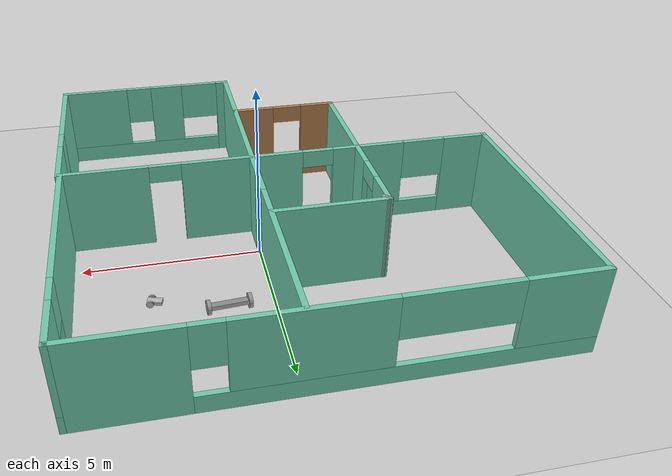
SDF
<sdf version="1.6">
 <world name="default">
  <plugin name="hello" filename="libhello.so"/>
  <light name="sun" type="directional">
   <pose>0 0 10 0 -0 0</pose>
   <diffuse>0.8 0.8 0.8 1</diffuse>
   <specular>0.2 0.2 0.2 1</specular>
   <attenuation>
    <range>1000</range>
    <constant>0.9</constant>
    <linear>0.01</linear>
    <quadratic>0.001</quadratic>
   </attenuation>
   <direction>-0.5 0.1 -0.9</direction>
  </light>
  <model name="ground_plane">
   <static>1</static>
   <link name="link">
    <collision name="collision">
     <geometry><plane><normal>0 0 1</normal><size>100 100</size></plane></geometry>
     <surface>
      <contact><collide_bitmask>65535</collide_bitmask></contact>
      <friction><ode><mu>100</mu><mu2>50</mu2></ode></friction>
     </surface>
    </collision>
    <visual name="visual">
     <cast_shadows>0</cast_shadows>
     <geometry><plane><normal>0 0 1</normal><size>100 100</size></plane></geometry>
     <material>
      <script><uri>file://media/materials/scripts/gazebo.material</uri><name>Gazebo/Grey</name></script>
     </material>
    </visual>
   </link>
  </model>
  <gravity>0 0 -9.8</gravity>
  <magnetic_field>6e-06 2.3e-05 -4.2e-05</magnetic_field>
  <atmosphere type="adiabatic"/>
  <physics name="default_physics" default="0" type="ode">
   <max_step_size>0.001</max_step_size>
   <real_time_factor>1</real_time_factor>
   <real_time_update_rate>1000</real_time_update_rate>
  </physics>
  <scene><ambient>0.4 0.4 0.4 1</ambient><background>0.7 0.7 0.7 1</background><shadows>1</shadows></scene>
  <spherical_coordinates>
   <surface_model>EARTH_WGS84</surface_model>
   <latitude_deg>0</latitude_deg>
   <longitude_deg>0</longitude_deg>
   <elevation>0</elevation>
   <heading_deg>0</heading_deg>
  </spherical_coordinates>
  <model name="robot">
   <link name="link_0">
    <pose>0.736695 0.952784 0.2 0 -0 0</pose>
    <inertial>
     <mass>1</mass>
     <inertia>
      <ixx>0.166667</ixx>
      <ixy>0</ixy>
      <ixz>0</ixz>
      <iyy>0.166667</iyy>
      <iyz>0</iyz>
      <izz>0.166667</izz>
     </inertia>
    </inertial>
    <visual name="visual">
     <geometry><box><size>0.3 1 0.1</size></box></geometry>
     <material>
      <lighting>1</lighting>
      <script><uri>file://media/materials/scripts/gazebo.material</uri><name>Gazebo/Grey</name></script>
      <shader type="pixel"><normal_map>__default__</normal_map></shader>
      <ambient>0.3 0.3 0.3 1</ambient>
      <diffuse>0.7 0.7 0.7 1</diffuse>
      <specular>0.01 0.01 0.01 1</specular>
      <emissive>0 0 0 1</emissive>
     </material>
    </visual>
    <collision name="collision">
     <geometry><box><size>0.3 1 0.1</size></box></geometry>
     <surface>
      <friction>
       <ode><mu>1</mu><mu2>1</mu2><fdir1>0 0 0</fdir1><slip1>0</slip1><slip2>0</slip2></ode>
       <torsional>
        <coefficient>1</coefficient>
        <patch_radius>0</patch_radius>
        <surface_radius>0</surface_radius>
        <use_patch_radius>1</use_patch_radius>
        <ode><slip>0</slip></ode>
       </torsional>
      </friction>
      <bounce><restitution_coefficient>0</restitution_coefficient><threshold>1e+06</threshold></bounce>
      <contact>
       <collide_without_contact>0</collide_without_contact>
       <collide_without_contact_bitmask>1</collide_without_contact_bitmask>
       <collide_bitmask>1</collide_bitmask>
       <ode>
        <soft_cfm>0</soft_cfm>
        <soft_erp>0.2</soft_erp>
        <kp>1e+13</kp>
        <kd>1</kd>
        <max_vel>0.01</max_vel>
        <min_depth>0</min_depth>
       </ode>
       <bullet>
        <split_impulse>1</split_impulse>
        <split_impulse_penetration_threshold>-0.01</split_impulse_penetration_threshold>
        <soft_cfm>0</soft_cfm>
        <soft_erp>0.2</soft_erp>
        <kp>1e+13</kp>
        <kd>1</kd>
       </bullet>
      </contact>
     </surface>
    </collision>
   </link>
   <link name="link_1">
    <pose>0.736695 1.5928 0.2 1.5707 -0 0</pose>
    <inertial>
     <mass>1</mass>
     <inertia><ixx>0.145833</ixx><ixy>0</ixy><ixz>0</ixz><iyy>0.145833</iyy><iyz>0</iyz><izz>0.125</izz></inertia>
    </inertial>
    <visual name="visual">
     <pose>0 0 0.1 0 -0 0</pose>
     <geometry><cylinder><radius>0.2</radius><length>0.1</length></cylinder></geometry>
     <material>
      <lighting>1</lighting>
      <script><uri>file://media/materials/scripts/gazebo.material</uri><name>Gazebo/Grey</name></script>
      <shader type="pixel"><normal_map>__default__</normal_map></shader>
      <ambient>0.3 0.3 0.3 1</ambient>
      <diffuse>0.7 0.7 0.7 1</diffuse>
      <specular>0.01 0.01 0.01 1</specular>
      <emissive>0 0 0 1</emissive>
     </material>
    </visual>
    <collision name="collision">
     <pose>0 0 0.1 0 -0 0</pose>
     <geometry><cylinder><radius>0.2</radius><length>0.1</length></cylinder></geometry>
     <surface>
      <friction>
       <ode><mu>1</mu><mu2>1</mu2><fdir1>0 0 0</fdir1><slip1>0</slip1><slip2>0</slip2></ode>
       <torsional>
        <coefficient>1</coefficient>
        <patch_radius>0</patch_radius>
        <surface_radius>0</surface_radius>
        <use_patch_radius>1</use_patch_radius>
        <ode><slip>0</slip></ode>
       </torsional>
      </friction>
      <bounce><restitution_coefficient>0</restitution_coefficient><threshold>1e+06</threshold></bounce>
      <contact>
       <collide_without_contact>0</collide_without_contact>
       <collide_without_contact_bitmask>1</collide_without_contact_bitmask>
       <collide_bitmask>1</collide_bitmask>
       <ode>
        <soft_cfm>0</soft_cfm>
        <soft_erp>0.2</soft_erp>
        <kp>1e+13</kp>
        <kd>1</kd>
        <max_vel>0.01</max_vel>
        <min_depth>0</min_depth>
       </ode>
       <bullet>
        <split_impulse>1</split_impulse>
        <split_impulse_penetration_threshold>-0.01</split_impulse_penetration_threshold>
        <soft_cfm>0</soft_cfm>
        <soft_erp>0.2</soft_erp>
        <kp>1e+13</kp>
        <kd>1</kd>
       </bullet>
      </contact>
     </surface>
    </collision>
   </link>
   <link name="link_1_clone">
    <pose>0.736695 0.402764 0.2 1.5707 -0 0</pose>
    <inertial>
     <mass>1</mass>
     <inertia><ixx>0.145833</ixx><ixy>0</ixy><ixz>0</ixz><iyy>0.145833</iyy><iyz>0</iyz><izz>0.125</izz></inertia>
    </inertial>
    <visual name="visual">
     <geometry><cylinder><radius>0.2</radius><length>0.1</length></cylinder></geometry>
     <material>
      <lighting>1</lighting>
      <script><uri>file://media/materials/scripts/gazebo.material</uri><name>Gazebo/Grey</name></script>
      <shader type="pixel"><normal_map>__default__</normal_map></shader>
      <ambient>0.3 0.3 0.3 1</ambient>
      <diffuse>0.7 0.7 0.7 1</diffuse>
      <specular>0.01 0.01 0.01 1</specular>
      <emissive>0 0 0 1</emissive>
     </material>
    </visual>
    <collision name="collision">
     <geometry><cylinder><radius>0.2</radius><length>0.1</length></cylinder></geometry>
     <surface>
      <friction>
       <ode><mu>1</mu><mu2>1</mu2><fdir1>0 0 0</fdir1><slip1>0</slip1><slip2>0</slip2></ode>
       <torsional>
        <coefficient>1</coefficient>
        <patch_radius>0</patch_radius>
        <surface_radius>0</surface_radius>
        <use_patch_radius>1</use_patch_radius>
        <ode><slip>0</slip></ode>
       </torsional>
      </friction>
      <bounce><restitution_coefficient>0</restitution_coefficient><threshold>1e+06</threshold></bounce>
      <contact>
       <collide_without_contact>0</collide_without_contact>
       <collide_without_contact_bitmask>1</collide_without_contact_bitmask>
       <collide_bitmask>1</collide_bitmask>
       <ode>
        <soft_cfm>0</soft_cfm>
        <soft_erp>0.2</soft_erp>
        <kp>1e+13</kp>
        <kd>1</kd>
        <max_vel>0.01</max_vel>
        <min_depth>0</min_depth>
       </ode>
       <bullet>
        <split_impulse>1</split_impulse>
        <split_impulse_penetration_threshold>-0.01</split_impulse_penetration_threshold>
        <soft_cfm>0</soft_cfm>
        <soft_erp>0.2</soft_erp>
        <kp>1e+13</kp>
        <kd>1</kd>
       </bullet>
      </contact>
     </surface>
    </collision>
   </link>
   <joint name="link_0_JOINT_0" type="revolute">
    <parent>link_0</parent>
    <child>link_1_clone</child>
    <axis>
     <xyz>0 0 1</xyz>
     <use_parent_model_frame>0</use_parent_model_frame>
     <limit>
      <lower>-1.79769e+308</lower>
      <upper>1.79769e+308</upper>
      <effort>-1</effort>
      <velocity>-1</velocity>
     </limit>
     <dynamics>
      <spring_reference>0</spring_reference>
      <spring_stiffness>0</spring_stiffness>
      <damping>0</damping>
     </dynamics>
    </axis>
    <physics>
     <ode><limit><cfm>0</cfm><erp>0.2</erp></limit><suspension><cfm>0</cfm><erp>0.2</erp></suspension></ode>
    </physics>
   </joint>
   <joint name="link_0_JOINT_1" type="revolute">
    <parent>link_0</parent>
    <child>link_1</child>
    <axis>
     <xyz>0 0 1</xyz>
     <use_parent_model_frame>0</use_parent_model_frame>
     <limit>
      <lower>-1.79769e+308</lower>
      <upper>1.79769e+308</upper>
      <effort>-1</effort>
      <velocity>-1</velocity>
     </limit>
     <dynamics>
      <spring_reference>0</spring_reference>
      <spring_stiffness>0</spring_stiffness>
      <damping>0</damping>
     </dynamics>
    </axis>
    <physics>
     <ode><limit><cfm>0</cfm><erp>0.2</erp></limit><suspension><cfm>0</cfm><erp>0.2</erp></suspension></ode>
    </physics>
   </joint>
   <static>0</static>
   <pose>2.20388 1.80851 -0.202365 -9e-06 -0.2901 1.64443</pose>
  </model>
  <model name="house">
   <pose>-0.87755 -0.55486 0 0 -0 0</pose>
   <link name="Wall_0">
    <collision name="Wall_0_Collision">
     <geometry><box><size>7 0.15 2.5</size></box></geometry>
     <pose>0 0 1.25 0 -0 0</pose>
    </collision>
    <visual name="Wall_0_Visual">
     <pose>0 0 1.25 0 -0 0</pose>
     <geometry><box><size>7 0.15 2.5</size></box></geometry>
     <material>
      <script><uri>file://media/materials/scripts/gazebo.material</uri><name>Gazebo/Grey</name></script>
      <ambient>0.435294 0.796078 0.67451 1</ambient>
     </material>
     <meta><layer>0</layer></meta>
    </visual>
    <pose>-6.19953 2.7899 0 0 0 -1.5708</pose>
   </link>
   <link name="Wall_1">
    <pose>-0.024526 -0.635099 0 0 -0 0</pose>
    <visual name="Wall_1_Visual_0">
     <pose>-5.57633 0 1.25 0 -0 0</pose>
     <geometry><box><size>1.34734 0.15 2.5</size></box></geometry>
     <material>
      <script><uri>file://media/materials/scripts/gazebo.material</uri><name>Gazebo/Grey</name></script>
      <ambient>0.435294 0.796078 0.67451 1</ambient>
     </material>
     <meta><layer>0</layer></meta>
    </visual>
    <collision name="Wall_1_Collision_0">
     <geometry><box><size>1.34734 0.15 2.5</size></box></geometry>
     <pose>-5.57633 0 1.25 0 -0 0</pose>
    </collision>
    <visual name="Wall_1_Visual_1">
     <pose>1.13789 0 1.25 0 -0 0</pose>
     <geometry><box><size>3.49001 0.15 2.5</size></box></geometry>
     <material>
      <script><uri>file://media/materials/scripts/gazebo.material</uri><name>Gazebo/Grey</name></script>
      <ambient>0.435294 0.796078 0.67451 1</ambient>
     </material>
     <meta><layer>0</layer></meta>
    </visual>
    <collision name="Wall_1_Collision_1">
     <geometry><box><size>3.49001 0.15 2.5</size></box></geometry>
     <pose>1.13789 0 1.25 0 -0 0</pose>
    </collision>
    <visual name="Wall_1_Visual_2">
     <pose>5.01645 0 1.25 0 -0 0</pose>
     <geometry><box><size>2.46711 0.15 2.5</size></box></geometry>
     <material>
      <script><uri>file://media/materials/scripts/gazebo.material</uri><name>Gazebo/Grey</name></script>
      <ambient>0.435294 0.796078 0.67451 1</ambient>
     </material>
     <meta><layer>0</layer></meta>
    </visual>
    <collision name="Wall_1_Collision_2">
     <geometry><box><size>2.46711 0.15 2.5</size></box></geometry>
     <pose>5.01645 0 1.25 0 -0 0</pose>
    </collision>
    <visual name="Wall_1_Visual_3">
     <pose>-3.20489 0 0.25 0 -0 0</pose>
     <geometry><box><size>3.39554 0.15 0.5</size></box></geometry>
     <material>
      <script><uri>file://media/materials/scripts/gazebo.material</uri><name>Gazebo/Grey</name></script>
      <ambient>0.435294 0.796078 0.67451 1</ambient>
     </material>
     <meta><layer>0</layer></meta>
    </visual>
    <collision name="Wall_1_Collision_3">
     <geometry><box><size>3.39554 0.15 0.5</size></box></geometry>
     <pose>-3.20489 0 0.25 0 -0 0</pose>
    </collision>
    <visual name="Wall_1_Visual_4">
     <pose>-2.57752 0 1.5 0 -0 0</pose>
     <geometry><box><size>2.1408 0.15 2</size></box></geometry>
     <material>
      <script><uri>file://media/materials/scripts/gazebo.material</uri><name>Gazebo/Grey</name></script>
      <ambient>0.435294 0.796078 0.67451 1</ambient>
     </material>
     <meta><layer>0</layer></meta>
    </visual>
    <collision name="Wall_1_Collision_4">
     <geometry><box><size>2.1408 0.15 2</size></box></geometry>
     <pose>-2.57752 0 1.5 0 -0 0</pose>
    </collision>
    <visual name="Wall_1_Visual_5">
     <pose>-4.27529 0 1.9 0 -0 0</pose>
     <geometry><box><size>1.25474 0.15 1.2</size></box></geometry>
     <material>
      <script><uri>file://media/materials/scripts/gazebo.material</uri><name>Gazebo/Grey</name></script>
      <ambient>0.435294 0.796078 0.67451 1</ambient>
     </material>
     <meta><layer>0</layer></meta>
    </visual>
    <collision name="Wall_1_Collision_5">
     <geometry><box><size>1.25474 0.15 1.2</size></box></geometry>
     <pose>-4.27529 0 1.9 0 -0 0</pose>
    </collision>
    <visual name="Wall_1_Visual_6">
     <pose>3.33289 0 2.25 0 -0 0</pose>
     <geometry><box><size>0.9 0.15 0.5</size></box></geometry>
     <material>
      <script><uri>file://media/materials/scripts/gazebo.material</uri><name>Gazebo/Grey</name></script>
      <ambient>0.435294 0.796078 0.67451 1</ambient>
     </material>
     <meta><layer>0</layer></meta>
    </visual>
    <collision name="Wall_1_Collision_6">
     <geometry><box><size>0.9 0.15 0.5</size></box></geometry>
     <pose>3.33289 0 2.25 0 -0 0</pose>
    </collision>
    <visual name="Wall_1_Visual_7">
     <pose>-1.05712 0 2.25 0 -0 0</pose>
     <geometry><box><size>0.9 0.15 0.5</size></box></geometry>
     <material>
      <script><uri>file://media/materials/scripts/gazebo.material</uri><name>Gazebo/Grey</name></script>
      <ambient>0.435294 0.796078 0.67451 1</ambient>
     </material>
     <meta><layer>0</layer></meta>
    </visual>
    <collision name="Wall_1_Collision_7">
     <geometry><box><size>0.9 0.15 0.5</size></box></geometry>
     <pose>-1.05712 0 2.25 0 -0 0</pose>
    </collision>
   </link>
   <link name="Wall_10">
    <pose>-0.712697 -3.76873 0 0 -0 0</pose>
    <visual name="Wall_10_Visual_0">
     <pose>-1.0908 0 1.25 0 -0 0</pose>
     <geometry><box><size>1.06841 0.15 2.5</size></box></geometry>
     <material>
      <script><uri>file://media/materials/scripts/gazebo.material</uri><name>Gazebo/Wood</name></script>
      <ambient>0.435294 0.796078 0.67451 1</ambient>
     </material>
     <meta><layer>0</layer></meta>
    </visual>
    <collision name="Wall_10_Collision_0">
     <geometry><box><size>1.06841 0.15 2.5</size></box></geometry>
     <pose>-1.0908 0 1.25 0 -0 0</pose>
    </collision>
    <visual name="Wall_10_Visual_1">
     <pose>0.984203 0 1.25 0 -0 0</pose>
     <geometry><box><size>1.2816 0.15 2.5</size></box></geometry>
     <material>
      <script><uri>file://media/materials/scripts/gazebo.material</uri><name>Gazebo/Wood</name></script>
      <ambient>0.435294 0.796078 0.67451 1</ambient>
     </material>
     <meta><layer>0</layer></meta>
    </visual>
    <collision name="Wall_10_Collision_1">
     <geometry><box><size>1.2816 0.15 2.5</size></box></geometry>
     <pose>0.984203 0 1.25 0 -0 0</pose>
    </collision>
    <visual name="Wall_10_Visual_2">
     <pose>-0.106595 0 2.25 0 -0 0</pose>
     <geometry><box><size>0.9 0.15 0.5</size></box></geometry>
     <material>
      <script><uri>file://media/materials/scripts/gazebo.material</uri><name>Gazebo/Wood</name></script>
      <ambient>0.435294 0.796078 0.67451 1</ambient>
     </material>
     <meta><layer>0</layer></meta>
    </visual>
    <collision name="Wall_10_Collision_2">
     <geometry><box><size>0.9 0.15 0.5</size></box></geometry>
     <pose>-0.106595 0 2.25 0 -0 0</pose>
    </collision>
   </link>
   <link name="Wall_12">
    <collision name="Wall_12_Collision">
     <geometry><box><size>0.289231 0.15 2.5</size></box></geometry>
     <pose>0 0 1.25 0 -0 0</pose>
    </collision>
    <visual name="Wall_12_Visual">
     <pose>0 0 1.25 0 -0 0</pose>
     <geometry><box><size>0.289231 0.15 2.5</size></box></geometry>
     <material>
      <script><uri>file://media/materials/scripts/gazebo.material</uri><name>Gazebo/Grey</name></script>
      <ambient>1 1 1 1</ambient>
     </material>
     <meta><layer>0</layer></meta>
    </visual>
    <pose>-2.2178 2.27807 0 0 0 -0.869805</pose>
   </link>
   <link name="Wall_14">
    <collision name="Wall_14_Collision">
     <geometry><box><size>3.25 0.15 2.5</size></box></geometry>
     <pose>0 0 1.25 0 -0 0</pose>
    </collision>
    <visual name="Wall_14_Visual">
     <pose>0 0 1.25 0 -0 0</pose>
     <geometry><box><size>3.25 0.15 2.5</size></box></geometry>
     <material>
      <script><uri>file://media/materials/scripts/gazebo.material</uri><name>Gazebo/Grey</name></script>
      <ambient>0.435294 0.796078 0.67451 1</ambient>
     </material>
     <meta><layer>0</layer></meta>
    </visual>
    <pose>-0.712697 2.33127 0 0 -0 0</pose>
   </link>
   <link name="Wall_2">
    <pose>6.15047 2.7899 0 0 -0 1.5708</pose>
    <visual name="Wall_2_Visual_0">
     <pose>-1.13268 0 1.25 0 -0 0</pose>
     <geometry><box><size>4.73463 0.15 2.5</size></box></geometry>
     <material>
      <script><uri>file://media/materials/scripts/gazebo.material</uri><name>Gazebo/Grey</name></script>
      <ambient>0.435294 0.796078 0.67451 1</ambient>
     </material>
     <meta><layer>0</layer></meta>
    </visual>
    <collision name="Wall_2_Collision_0">
     <geometry><box><size>4.73463 0.15 2.5</size></box></geometry>
     <pose>-1.13268 0 1.25 0 -0 0</pose>
    </collision>
    <visual name="Wall_2_Visual_1">
     <pose>2.36732 0 0.25 0 -0 0</pose>
     <geometry><box><size>2.26537 0.15 0.5</size></box></geometry>
     <material>
      <script><uri>file://media/materials/scripts/gazebo.material</uri><name>Gazebo/Grey</name></script>
      <ambient>0.435294 0.796078 0.67451 1</ambient>
     </material>
     <meta><layer>0</layer></meta>
    </visual>
    <collision name="Wall_2_Collision_1">
     <geometry><box><size>2.26537 0.15 0.5</size></box></geometry>
     <pose>2.36732 0 0.25 0 -0 0</pose>
    </collision>
    <visual name="Wall_2_Visual_2">
     <pose>2.76731 0 1.5 0 -0 0</pose>
     <geometry><box><size>1.46537 0.15 2</size></box></geometry>
     <material>
      <script><uri>file://media/materials/scripts/gazebo.material</uri><name>Gazebo/Grey</name></script>
      <ambient>0.435294 0.796078 0.67451 1</ambient>
     </material>
     <meta><layer>0</layer></meta>
    </visual>
    <collision name="Wall_2_Collision_2">
     <geometry><box><size>1.46537 0.15 2</size></box></geometry>
     <pose>2.76731 0 1.5 0 -0 0</pose>
    </collision>
    <visual name="Wall_2_Visual_3">
     <pose>1.63463 0 1.9 0 -0 0</pose>
     <geometry><box><size>0.8 0.15 1.2</size></box></geometry>
     <material>
      <script><uri>file://media/materials/scripts/gazebo.material</uri><name>Gazebo/Grey</name></script>
      <ambient>0.435294 0.796078 0.67451 1</ambient>
     </material>
     <meta><layer>0</layer></meta>
    </visual>
    <collision name="Wall_2_Collision_3">
     <geometry><box><size>0.8 0.15 1.2</size></box></geometry>
     <pose>1.63463 0 1.9 0 -0 0</pose>
    </collision>
   </link>
   <link name="Wall_3">
    <pose>-0.024526 6.2149 0 0 -0 3.14159</pose>
    <visual name="Wall_3_Visual_0">
     <pose>-4.8078 0 1.25 0 -0 0</pose>
     <geometry><box><size>2.8844 0.15 2.5</size></box></geometry>
     <material>
      <script><uri>file://media/materials/scripts/gazebo.material</uri><name>Gazebo/Grey</name></script>
      <ambient>0.435294 0.796078 0.67451 1</ambient>
     </material>
     <meta><layer>0</layer></meta>
    </visual>
    <collision name="Wall_3_Collision_0">
     <geometry><box><size>2.8844 0.15 2.5</size></box></geometry>
     <pose>-4.8078 0 1.25 0 -0 0</pose>
    </collision>
    <visual name="Wall_3_Visual_1">
     <pose>1.4422 0 0.25 0 -0 0</pose>
     <geometry><box><size>9.6156 0.15 0.5</size></box></geometry>
     <material>
      <script><uri>file://media/materials/scripts/gazebo.material</uri><name>Gazebo/Grey</name></script>
      <ambient>0.435294 0.796078 0.67451 1</ambient>
     </material>
     <meta><layer>0</layer></meta>
    </visual>
    <collision name="Wall_3_Collision_1">
     <geometry><box><size>9.6156 0.15 0.5</size></box></geometry>
     <pose>1.4422 0 0.25 0 -0 0</pose>
    </collision>
    <visual name="Wall_3_Visual_2">
     <pose>-0.6744 0 1.5 0 -0 0</pose>
     <geometry><box><size>3.7824 0.15 2</size></box></geometry>
     <material>
      <script><uri>file://media/materials/scripts/gazebo.material</uri><name>Gazebo/Grey</name></script>
      <ambient>0.435294 0.796078 0.67451 1</ambient>
     </material>
     <meta><layer>0</layer></meta>
    </visual>
    <collision name="Wall_3_Collision_2">
     <geometry><box><size>3.7824 0.15 2</size></box></geometry>
     <pose>-0.6744 0 1.5 0 -0 0</pose>
    </collision>
    <visual name="Wall_3_Visual_3">
     <pose>5.19155 0 1.5 0 -0 0</pose>
     <geometry><box><size>2.1169 0.15 2</size></box></geometry>
     <material>
      <script><uri>file://media/materials/scripts/gazebo.material</uri><name>Gazebo/Grey</name></script>
      <ambient>0.435294 0.796078 0.67451 1</ambient>
     </material>
     <meta><layer>0</layer></meta>
    </visual>
    <collision name="Wall_3_Collision_3">
     <geometry><box><size>2.1169 0.15 2</size></box></geometry>
     <pose>5.19155 0 1.5 0 -0 0</pose>
    </collision>
    <visual name="Wall_3_Visual_4">
     <pose>-2.9656 0 1.9 0 -0 0</pose>
     <geometry><box><size>0.8 0.15 1.2</size></box></geometry>
     <material>
      <script><uri>file://media/materials/scripts/gazebo.material</uri><name>Gazebo/Grey</name></script>
      <ambient>0.435294 0.796078 0.67451 1</ambient>
     </material>
     <meta><layer>0</layer></meta>
    </visual>
    <collision name="Wall_3_Collision_4">
     <geometry><box><size>0.8 0.15 1.2</size></box></geometry>
     <pose>-2.9656 0 1.9 0 -0 0</pose>
    </collision>
    <visual name="Wall_3_Visual_5">
     <pose>2.67495 0 1.9 0 -0 0</pose>
     <geometry><box><size>2.9163 0.15 1.2</size></box></geometry>
     <material>
      <script><uri>file://media/materials/scripts/gazebo.material</uri><name>Gazebo/Grey</name></script>
      <ambient>0.435294 0.796078 0.67451 1</ambient>
     </material>
     <meta><layer>0</layer></meta>
    </visual>
    <collision name="Wall_3_Collision_5">
     <geometry><box><size>2.9163 0.15 1.2</size></box></geometry>
     <pose>2.67495 0 1.9 0 -0 0</pose>
    </collision>
   </link>
   <link name="Wall_5">
    <pose>0.849526 -0.0399 0 0 0 -1.5708</pose>
    <visual name="Wall_5_Visual_0">
     <pose>-3.76325 0 1.25 0 -0 0</pose>
     <geometry><box><size>4.9735 0.15 2.5</size></box></geometry>
     <material>
      <script><uri>file://media/materials/scripts/gazebo.material</uri><name>Gazebo/Grey</name></script>
      <ambient>0.435294 0.796078 0.67451 1</ambient>
     </material>
     <meta><layer>0</layer></meta>
    </visual>
    <collision name="Wall_5_Collision_0">
     <geometry><box><size>4.9735 0.15 2.5</size></box></geometry>
     <pose>-3.76325 0 1.25 0 -0 0</pose>
    </collision>
    <visual name="Wall_5_Visual_1">
     <pose>2.93675 0 1.25 0 -0 0</pose>
     <geometry><box><size>6.6265 0.15 2.5</size></box></geometry>
     <material>
      <script><uri>file://media/materials/scripts/gazebo.material</uri><name>Gazebo/Grey</name></script>
      <ambient>0.435294 0.796078 0.67451 1</ambient>
     </material>
     <meta><layer>0</layer></meta>
    </visual>
    <collision name="Wall_5_Collision_1">
     <geometry><box><size>6.6265 0.15 2.5</size></box></geometry>
     <pose>2.93675 0 1.25 0 -0 0</pose>
    </collision>
    <visual name="Wall_5_Visual_2">
     <pose>-0.826498 0 2.25 0 -0 0</pose>
     <geometry><box><size>0.9 0.15 0.5</size></box></geometry>
     <material>
      <script><uri>file://media/materials/scripts/gazebo.material</uri><name>Gazebo/Grey</name></script>
      <ambient>0.435294 0.796078 0.67451 1</ambient>
     </material>
     <meta><layer>0</layer></meta>
    </visual>
    <collision name="Wall_5_Collision_2">
     <geometry><box><size>0.9 0.15 0.5</size></box></geometry>
     <pose>-0.826498 0 2.25 0 -0 0</pose>
    </collision>
   </link>
   <link name="Wall_6">
    <pose>3.52453 -6.2149 0 0 -0 0</pose>
    <visual name="Wall_6_Visual_0">
     <pose>-2.54884 0 1.25 0 -0 0</pose>
     <geometry><box><size>0.402321 0.15 2.5</size></box></geometry>
     <material>
      <script><uri>file://media/materials/scripts/gazebo.material</uri><name>Gazebo/Grey</name></script>
      <ambient>0.435294 0.796078 0.67451 1</ambient>
     </material>
     <meta><layer>0</layer></meta>
    </visual>
    <collision name="Wall_6_Collision_0">
     <geometry><box><size>0.402321 0.15 2.5</size></box></geometry>
     <pose>-2.54884 0 1.25 0 -0 0</pose>
    </collision>
    <visual name="Wall_6_Visual_1">
     <pose>0.20116 0 0.25 0 -0 0</pose>
     <geometry><box><size>5.09768 0.15 0.5</size></box></geometry>
     <material>
      <script><uri>file://media/materials/scripts/gazebo.material</uri><name>Gazebo/Grey</name></script>
      <ambient>0.435294 0.796078 0.67451 1</ambient>
     </material>
     <meta><layer>0</layer></meta>
    </visual>
    <collision name="Wall_6_Collision_1">
     <geometry><box><size>5.09768 0.15 0.5</size></box></geometry>
     <pose>0.20116 0 0.25 0 -0 0</pose>
    </collision>
    <visual name="Wall_6_Visual_2">
     <pose>-0.644669 0 1.5 0 -0 0</pose>
     <geometry><box><size>1.03646 0.15 2</size></box></geometry>
     <material>
      <script><uri>file://media/materials/scripts/gazebo.material</uri><name>Gazebo/Grey</name></script>
      <ambient>0.435294 0.796078 0.67451 1</ambient>
     </material>
     <meta><layer>0</layer></meta>
    </visual>
    <collision name="Wall_6_Collision_2">
     <geometry><box><size>1.03646 0.15 2</size></box></geometry>
     <pose>-0.644669 0 1.5 0 -0 0</pose>
    </collision>
    <visual name="Wall_6_Visual_3">
     <pose>1.71178 0 1.5 0 -0 0</pose>
     <geometry><box><size>2.07644 0.15 2</size></box></geometry>
     <material>
      <script><uri>file://media/materials/scripts/gazebo.material</uri><name>Gazebo/Grey</name></script>
      <ambient>0.435294 0.796078 0.67451 1</ambient>
     </material>
     <meta><layer>0</layer></meta>
    </visual>
    <collision name="Wall_6_Collision_3">
     <geometry><box><size>2.07644 0.15 2</size></box></geometry>
     <pose>1.71178 0 1.5 0 -0 0</pose>
    </collision>
    <visual name="Wall_6_Visual_4">
     <pose>-1.75529 0 1.9 0 -0 0</pose>
     <geometry><box><size>1.18478 0.15 1.2</size></box></geometry>
     <material>
      <script><uri>file://media/materials/scripts/gazebo.material</uri><name>Gazebo/Grey</name></script>
      <ambient>0.435294 0.796078 0.67451 1</ambient>
     </material>
     <meta><layer>0</layer></meta>
    </visual>
    <collision name="Wall_6_Collision_4">
     <geometry><box><size>1.18478 0.15 1.2</size></box></geometry>
     <pose>-1.75529 0 1.9 0 -0 0</pose>
    </collision>
    <visual name="Wall_6_Visual_5">
     <pose>0.273559 0 1.9 0 -0 0</pose>
     <geometry><box><size>0.8 0.15 1.2</size></box></geometry>
     <material>
      <script><uri>file://media/materials/scripts/gazebo.material</uri><name>Gazebo/Grey</name></script>
      <ambient>0.435294 0.796078 0.67451 1</ambient>
     </material>
     <meta><layer>0</layer></meta>
    </visual>
    <collision name="Wall_6_Collision_5">
     <geometry><box><size>0.8 0.15 1.2</size></box></geometry>
     <pose>0.273559 0 1.9 0 -0 0</pose>
    </collision>
   </link>
   <link name="Wall_7">
    <pose>6.19953 -3.4149 0 0 -0 1.5708</pose>
    <visual name="Wall_7_Visual_0">
     <pose>-1.31199 0 1.25 0 -0 0</pose>
     <geometry><box><size>3.12602 0.15 2.5</size></box></geometry>
     <material>
      <script><uri>file://media/materials/scripts/gazebo.material</uri><name>Gazebo/Grey</name></script>
      <ambient>0.435294 0.796078 0.67451 1</ambient>
     </material>
     <meta><layer>0</layer></meta>
    </visual>
    <collision name="Wall_7_Collision_0">
     <geometry><box><size>3.12602 0.15 2.5</size></box></geometry>
     <pose>-1.31199 0 1.25 0 -0 0</pose>
    </collision>
    <visual name="Wall_7_Visual_1">
     <pose>1.56301 0 0.25 0 -0 0</pose>
     <geometry><box><size>2.62398 0.15 0.5</size></box></geometry>
     <material>
      <script><uri>file://media/materials/scripts/gazebo.material</uri><name>Gazebo/Grey</name></script>
      <ambient>0.435294 0.796078 0.67451 1</ambient>
     </material>
     <meta><layer>0</layer></meta>
    </visual>
    <collision name="Wall_7_Collision_1">
     <geometry><box><size>2.62398 0.15 0.5</size></box></geometry>
     <pose>1.56301 0 0.25 0 -0 0</pose>
    </collision>
    <visual name="Wall_7_Visual_2">
     <pose>1.96301 0 1.5 0 -0 0</pose>
     <geometry><box><size>1.82398 0.15 2</size></box></geometry>
     <material>
      <script><uri>file://media/materials/scripts/gazebo.material</uri><name>Gazebo/Grey</name></script>
      <ambient>0.435294 0.796078 0.67451 1</ambient>
     </material>
     <meta><layer>0</layer></meta>
    </visual>
    <collision name="Wall_7_Collision_2">
     <geometry><box><size>1.82398 0.15 2</size></box></geometry>
     <pose>1.96301 0 1.5 0 -0 0</pose>
    </collision>
    <visual name="Wall_7_Visual_3">
     <pose>0.651015 0 1.9 0 -0 0</pose>
     <geometry><box><size>0.8 0.15 1.2</size></box></geometry>
     <material>
      <script><uri>file://media/materials/scripts/gazebo.material</uri><name>Gazebo/Grey</name></script>
      <ambient>0.435294 0.796078 0.67451 1</ambient>
     </material>
     <meta><layer>0</layer></meta>
    </visual>
    <collision name="Wall_7_Collision_3">
     <geometry><box><size>0.8 0.15 1.2</size></box></geometry>
     <pose>0.651015 0 1.9 0 -0 0</pose>
    </collision>
   </link>
   <link name="Wall_9">
    <pose>-2.2627 -0.718728 0 0 0 -1.5708</pose>
    <visual name="Wall_9_Visual_0">
     <pose>-2.51393 0 1.25 0 -0 0</pose>
     <geometry><box><size>1.22214 0.15 2.5</size></box></geometry>
     <material>
      <script><uri>file://media/materials/scripts/gazebo.material</uri><name>Gazebo/Grey</name></script>
      <ambient>0.435294 0.796078 0.67451 1</ambient>
     </material>
     <meta><layer>0</layer></meta>
    </visual>
    <collision name="Wall_9_Collision_0">
     <geometry><box><size>1.22214 0.15 2.5</size></box></geometry>
     <pose>-2.51393 0 1.25 0 -0 0</pose>
    </collision>
    <visual name="Wall_9_Visual_1">
     <pose>1.06107 0 1.25 0 -0 0</pose>
     <geometry><box><size>4.12786 0.15 2.5</size></box></geometry>
     <material>
      <script><uri>file://media/materials/scripts/gazebo.material</uri><name>Gazebo/Grey</name></script>
      <ambient>0.435294 0.796078 0.67451 1</ambient>
     </material>
     <meta><layer>0</layer></meta>
    </visual>
    <collision name="Wall_9_Collision_1">
     <geometry><box><size>4.12786 0.15 2.5</size></box></geometry>
     <pose>1.06107 0 1.25 0 -0 0</pose>
    </collision>
    <visual name="Wall_9_Visual_2">
     <pose>-1.45286 0 2.25 0 -0 0</pose>
     <geometry><box><size>0.9 0.15 0.5</size></box></geometry>
     <material>
      <script><uri>file://media/materials/scripts/gazebo.material</uri><name>Gazebo/Grey</name></script>
      <ambient>0.435294 0.796078 0.67451 1</ambient>
     </material>
     <meta><layer>0</layer></meta>
    </visual>
    <collision name="Wall_9_Collision_2">
     <geometry><box><size>0.9 0.15 0.5</size></box></geometry>
     <pose>-1.45286 0 2.25 0 -0 0</pose>
    </collision>
   </link>
   <static>1</static>
  </model>
  <model name="my_robot2">
   <static>0</static>
   <link name="chassis">
    <pose>0 0 0.1 0 -0 0</pose>
    <collision name="collision"><geometry><box><size>0.4 0.2 0.1</size></box></geometry></collision>
    <visual name="visual"><geometry><box><size>0.4 0.2 0.1</size></box></geometry></visual>
    <collision name="caster_collision">
     <pose>-0.15 0 -0.05 0 -0 0</pose>
     <geometry><sphere><radius>0.05</radius></sphere></geometry>
     <surface><friction><ode><mu>0</mu><mu2>0</mu2><slip1>1</slip1><slip2>1</slip2></ode></friction></surface>
    </collision>
    <visual name="caster_visual">
     <pose>-0.15 0 -0.05 0 -0 0</pose>
     <geometry><sphere><radius>0.05</radius></sphere></geometry>
    </visual>
    <inertial>
     <inertia><ixx>1</ixx><ixy>0</ixy><ixz>0</ixz><iyy>1</iyy><iyz>0</iyz><izz>1</izz></inertia>
     <mass>1</mass>
    </inertial>
   </link>
   <link name="left_wheel">
    <pose>0.1 0.13 0.1 -0 1.5707 1.5707</pose>
    <collision name="collision">
     <geometry><cylinder><radius>0.1</radius><length>0.05</length></cylinder></geometry>
    </collision>
    <visual name="visual">
     <geometry><cylinder><radius>0.1</radius><length>0.05</length></cylinder></geometry>
    </visual>
    <inertial>
     <inertia><ixx>1</ixx><ixy>0</ixy><ixz>0</ixz><iyy>1</iyy><iyz>0</iyz><izz>1</izz></inertia>
     <mass>1</mass>
    </inertial>
   </link>
   <link name="right_wheel">
    <pose>0.1 -0.13 0.1 -0 1.5707 1.5707</pose>
    <collision name="collision">
     <geometry><cylinder><radius>0.1</radius><length>0.05</length></cylinder></geometry>
    </collision>
    <visual name="visual">
     <geometry><cylinder><radius>0.1</radius><length>0.05</length></cylinder></geometry>
    </visual>
    <inertial>
     <inertia><ixx>1</ixx><ixy>0</ixy><ixz>0</ixz><iyy>1</iyy><iyz>0</iyz><izz>1</izz></inertia>
     <mass>1</mass>
    </inertial>
   </link>
   <joint name="left_wheel_hinge" type="revolute">
    <pose>0 0 -0.03 0 -0 0</pose>
    <child>left_wheel</child>
    <parent>chassis</parent>
    <axis>
     <xyz>0 1 0</xyz>
     <use_parent_model_frame>1</use_parent_model_frame>
     <limit><lower>-1e+16</lower><upper>1e+16</upper></limit>
     <dynamics><spring_reference>0</spring_reference><spring_stiffness>0</spring_stiffness></dynamics>
    </axis>
   </joint>
   <joint name="right_wheel_hinge" type="revolute">
    <pose>0 0 0.03 0 -0 0</pose>
    <child>right_wheel</child>
    <parent>chassis</parent>
    <axis>
     <xyz>0 1 0</xyz>
     <use_parent_model_frame>1</use_parent_model_frame>
     <limit><lower>-1e+16</lower><upper>1e+16</upper></limit>
     <dynamics><spring_reference>0</spring_reference><spring_stiffness>0</spring_stiffness></dynamics>
    </axis>
   </joint>
   <pose>3.09292 1.77209 4e-06 -3.5e-05 -1.7e-05 -0.25232</pose>
  </model>
  <model name="robot_0">
   <link name="link_0">
    <pose>0.736695 0.952784 0.2 0 -0 0</pose>
    <inertial>
     <mass>1</mass>
     <inertia>
      <ixx>0.166667</ixx>
      <ixy>0</ixy>
      <ixz>0</ixz>
      <iyy>0.166667</iyy>
      <iyz>0</iyz>
      <izz>0.166667</izz>
     </inertia>
    </inertial>
    <visual name="visual">
     <geometry><box><size>0.3 1 0.1</size></box></geometry>
     <material>
      <lighting>1</lighting>
      <script><uri>file://media/materials/scripts/gazebo.material</uri><name>Gazebo/Grey</name></script>
      <shader type="pixel"><normal_map>__default__</normal_map></shader>
      <ambient>0.3 0.3 0.3 1</ambient>
      <diffuse>0.7 0.7 0.7 1</diffuse>
      <specular>0.01 0.01 0.01 1</specular>
      <emissive>0 0 0 1</emissive>
     </material>
    </visual>
    <collision name="collision">
     <geometry><box><size>0.3 1 0.1</size></box></geometry>
     <surface>
      <friction>
       <ode><mu>1</mu><mu2>1</mu2><fdir1>0 0 0</fdir1><slip1>0</slip1><slip2>0</slip2></ode>
       <torsional>
        <coefficient>1</coefficient>
        <patch_radius>0</patch_radius>
        <surface_radius>0</surface_radius>
        <use_patch_radius>1</use_patch_radius>
        <ode><slip>0</slip></ode>
       </torsional>
      </friction>
      <bounce><restitution_coefficient>0</restitution_coefficient><threshold>1e+06</threshold></bounce>
      <contact>
       <collide_without_contact>0</collide_without_contact>
       <collide_without_contact_bitmask>1</collide_without_contact_bitmask>
       <collide_bitmask>1</collide_bitmask>
       <ode>
        <soft_cfm>0</soft_cfm>
        <soft_erp>0.2</soft_erp>
        <kp>1e+13</kp>
        <kd>1</kd>
        <max_vel>0.01</max_vel>
        <min_depth>0</min_depth>
       </ode>
       <bullet>
        <split_impulse>1</split_impulse>
        <split_impulse_penetration_threshold>-0.01</split_impulse_penetration_threshold>
        <soft_cfm>0</soft_cfm>
        <soft_erp>0.2</soft_erp>
        <kp>1e+13</kp>
        <kd>1</kd>
       </bullet>
      </contact>
     </surface>
    </collision>
   </link>
   <link name="link_1">
    <pose>0.736695 1.5928 0.2 1.5707 -0 0</pose>
    <inertial>
     <mass>1</mass>
     <inertia><ixx>0.145833</ixx><ixy>0</ixy><ixz>0</ixz><iyy>0.145833</iyy><iyz>0</iyz><izz>0.125</izz></inertia>
    </inertial>
    <visual name="visual">
     <pose>0 0 0.1 0 -0 0</pose>
     <geometry><cylinder><radius>0.2</radius><length>0.1</length></cylinder></geometry>
     <material>
      <lighting>1</lighting>
      <script><uri>file://media/materials/scripts/gazebo.material</uri><name>Gazebo/Grey</name></script>
      <shader type="pixel"><normal_map>__default__</normal_map></shader>
      <ambient>0.3 0.3 0.3 1</ambient>
      <diffuse>0.7 0.7 0.7 1</diffuse>
      <specular>0.01 0.01 0.01 1</specular>
      <emissive>0 0 0 1</emissive>
     </material>
    </visual>
    <collision name="collision">
     <pose>0 0 0.1 0 -0 0</pose>
     <geometry><cylinder><radius>0.2</radius><length>0.1</length></cylinder></geometry>
     <surface>
      <friction>
       <ode><mu>1</mu><mu2>1</mu2><fdir1>0 0 0</fdir1><slip1>0</slip1><slip2>0</slip2></ode>
       <torsional>
        <coefficient>1</coefficient>
        <patch_radius>0</patch_radius>
        <surface_radius>0</surface_radius>
        <use_patch_radius>1</use_patch_radius>
        <ode><slip>0</slip></ode>
       </torsional>
      </friction>
      <bounce><restitution_coefficient>0</restitution_coefficient><threshold>1e+06</threshold></bounce>
      <contact>
       <collide_without_contact>0</collide_without_contact>
       <collide_without_contact_bitmask>1</collide_without_contact_bitmask>
       <collide_bitmask>1</collide_bitmask>
       <ode>
        <soft_cfm>0</soft_cfm>
        <soft_erp>0.2</soft_erp>
        <kp>1e+13</kp>
        <kd>1</kd>
        <max_vel>0.01</max_vel>
        <min_depth>0</min_depth>
       </ode>
       <bullet>
        <split_impulse>1</split_impulse>
        <split_impulse_penetration_threshold>-0.01</split_impulse_penetration_threshold>
        <soft_cfm>0</soft_cfm>
        <soft_erp>0.2</soft_erp>
        <kp>1e+13</kp>
        <kd>1</kd>
       </bullet>
      </contact>
     </surface>
    </collision>
   </link>
   <link name="link_1_clone">
    <pose>0.736695 0.402764 0.2 1.5707 -0 0</pose>
    <inertial>
     <mass>1</mass>
     <inertia><ixx>0.145833</ixx><ixy>0</ixy><ixz>0</ixz><iyy>0.145833</iyy><iyz>0</iyz><izz>0.125</izz></inertia>
    </inertial>
    <visual name="visual">
     <geometry><cylinder><radius>0.2</radius><length>0.1</length></cylinder></geometry>
     <material>
      <lighting>1</lighting>
      <script><uri>file://media/materials/scripts/gazebo.material</uri><name>Gazebo/Grey</name></script>
      <shader type="pixel"><normal_map>__default__</normal_map></shader>
      <ambient>0.3 0.3 0.3 1</ambient>
      <diffuse>0.7 0.7 0.7 1</diffuse>
      <specular>0.01 0.01 0.01 1</specular>
      <emissive>0 0 0 1</emissive>
     </material>
    </visual>
    <collision name="collision">
     <geometry><cylinder><radius>0.2</radius><length>0.1</length></cylinder></geometry>
     <surface>
      <friction>
       <ode><mu>1</mu><mu2>1</mu2><fdir1>0 0 0</fdir1><slip1>0</slip1><slip2>0</slip2></ode>
       <torsional>
        <coefficient>1</coefficient>
        <patch_radius>0</patch_radius>
        <surface_radius>0</surface_radius>
        <use_patch_radius>1</use_patch_radius>
        <ode><slip>0</slip></ode>
       </torsional>
      </friction>
      <bounce><restitution_coefficient>0</restitution_coefficient><threshold>1e+06</threshold></bounce>
      <contact>
       <collide_without_contact>0</collide_without_contact>
       <collide_without_contact_bitmask>1</collide_without_contact_bitmask>
       <collide_bitmask>1</collide_bitmask>
       <ode>
        <soft_cfm>0</soft_cfm>
        <soft_erp>0.2</soft_erp>
        <kp>1e+13</kp>
        <kd>1</kd>
        <max_vel>0.01</max_vel>
        <min_depth>0</min_depth>
       </ode>
       <bullet>
        <split_impulse>1</split_impulse>
        <split_impulse_penetration_threshold>-0.01</split_impulse_penetration_threshold>
        <soft_cfm>0</soft_cfm>
        <soft_erp>0.2</soft_erp>
        <kp>1e+13</kp>
        <kd>1</kd>
       </bullet>
      </contact>
     </surface>
    </collision>
   </link>
   <joint name="link_0_JOINT_0" type="revolute">
    <parent>link_0</parent>
    <child>link_1_clone</child>
    <axis>
     <xyz>0 0 1</xyz>
     <use_parent_model_frame>0</use_parent_model_frame>
     <limit>
      <lower>-1.79769e+308</lower>
      <upper>1.79769e+308</upper>
      <effort>-1</effort>
      <velocity>-1</velocity>
     </limit>
     <dynamics>
      <spring_reference>0</spring_reference>
      <spring_stiffness>0</spring_stiffness>
      <damping>0</damping>
     </dynamics>
    </axis>
    <physics>
     <ode><limit><cfm>0</cfm><erp>0.2</erp></limit><suspension><cfm>0</cfm><erp>0.2</erp></suspension></ode>
    </physics>
   </joint>
   <joint name="link_0_JOINT_1" type="revolute">
    <parent>link_0</parent>
    <child>link_1</child>
    <axis>
     <xyz>0 0 1</xyz>
     <use_parent_model_frame>0</use_parent_model_frame>
     <limit>
      <lower>-1.79769e+308</lower>
      <upper>1.79769e+308</upper>
      <effort>-1</effort>
      <velocity>-1</velocity>
     </limit>
     <dynamics>
      <spring_reference>0</spring_reference>
      <spring_stiffness>0</spring_stiffness>
      <damping>0</damping>
     </dynamics>
    </axis>
    <physics>
     <ode><limit><cfm>0</cfm><erp>0.2</erp></limit><suspension><cfm>0</cfm><erp>0.2</erp></suspension></ode>
    </physics>
   </joint>
   <static>0</static>
   <pose>2.75996 2.84035 9e-06 -9e-06 0 0</pose>
  </model>
  <model name="my_ball">
   <link name="link_0">
    <inertial>
     <mass>1</mass>
     <inertia><ixx>0.1</ixx><ixy>0</ixy><ixz>0</ixz><iyy>0.1</iyy><iyz>0</iyz><izz>0.1</izz></inertia>
    </inertial>
    <visual name="visual">
     <geometry><sphere><radius>0.1</radius></sphere></geometry>
     <material>
      <lighting>1</lighting>
      <script><uri>file://media/materials/scripts/gazebo.material</uri><name>Gazebo/Grey</name></script>
      <shader type="pixel"><normal_map>__default__</normal_map></shader>
      <ambient>1 1 1 1</ambient>
      <diffuse>1 1 1 1</diffuse>
      <specular>1 1 1 1</specular>
      <emissive>1 1 1 1</emissive>
     </material>
    </visual>
    <collision name="collision">
     <geometry><sphere><radius>0.1</radius></sphere></geometry>
     <surface>
      <friction>
       <ode><mu>1</mu><mu2>1</mu2><fdir1>0 0 0</fdir1><slip1>0</slip1><slip2>0</slip2></ode>
       <torsional>
        <coefficient>1</coefficient>
        <patch_radius>0</patch_radius>
        <surface_radius>0</surface_radius>
        <use_patch_radius>1</use_patch_radius>
        <ode><slip>0</slip></ode>
       </torsional>
      </friction>
      <bounce><restitution_coefficient>0</restitution_coefficient><threshold>1e+06</threshold></bounce>
      <contact>
       <collide_without_contact>0</collide_without_contact>
       <collide_without_contact_bitmask>1</collide_without_contact_bitmask>
       <collide_bitmask>1</collide_bitmask>
       <ode>
        <soft_cfm>0</soft_cfm>
        <soft_erp>0.2</soft_erp>
        <kp>1e+13</kp>
        <kd>1</kd>
        <max_vel>0.01</max_vel>
        <min_depth>0</min_depth>
       </ode>
       <bullet>
        <split_impulse>1</split_impulse>
        <split_impulse_penetration_threshold>-0.01</split_impulse_penetration_threshold>
        <soft_cfm>0</soft_cfm>
        <soft_erp>0.2</soft_erp>
        <kp>1e+13</kp>
        <kd>1</kd>
       </bullet>
      </contact>
     </surface>
    </collision>
   </link>
   <static>0</static>
   <pose>0.617948 4.57881 0.1 0 -0 0</pose>
  </model>
 </world>
</sdf>
